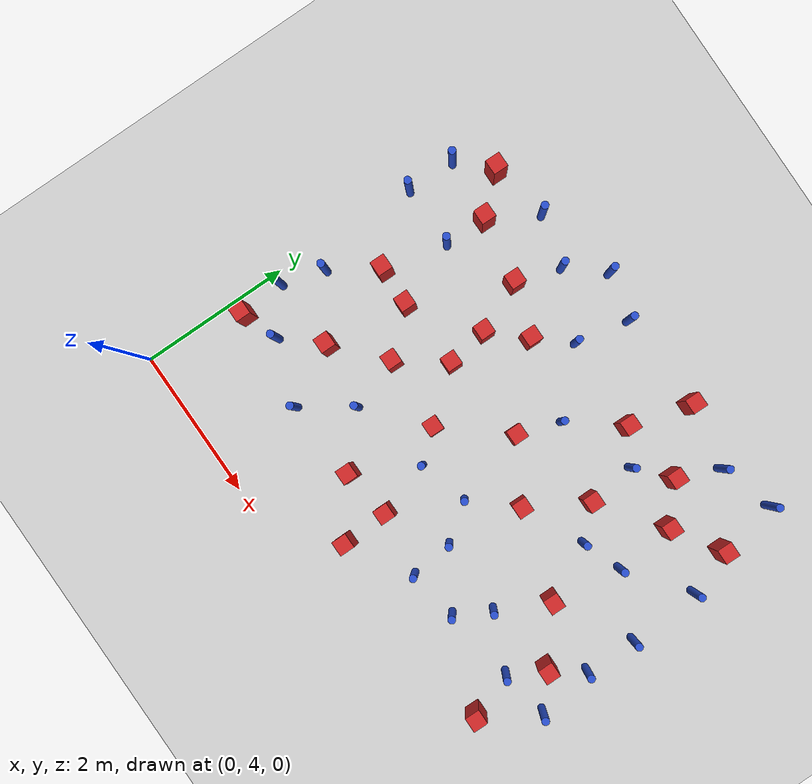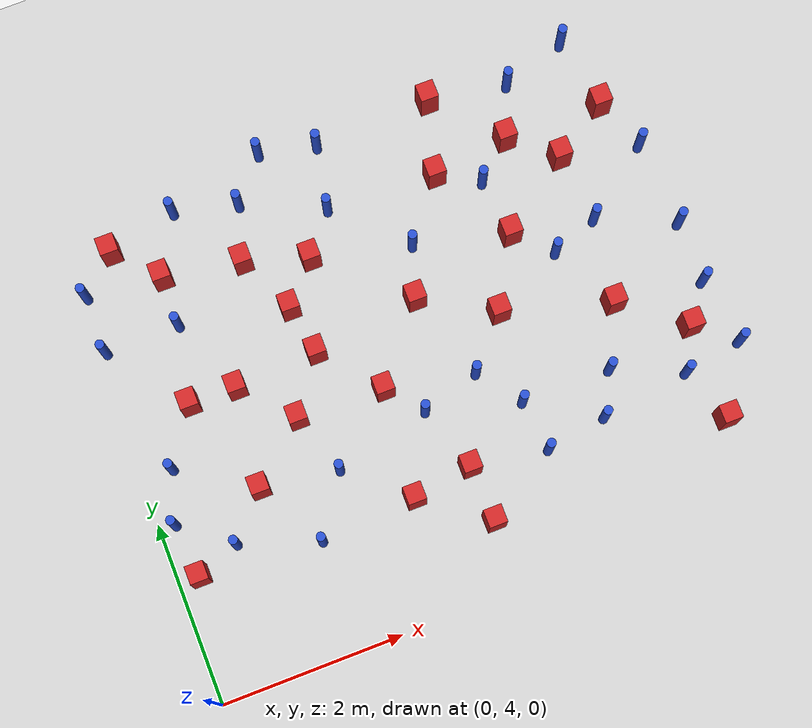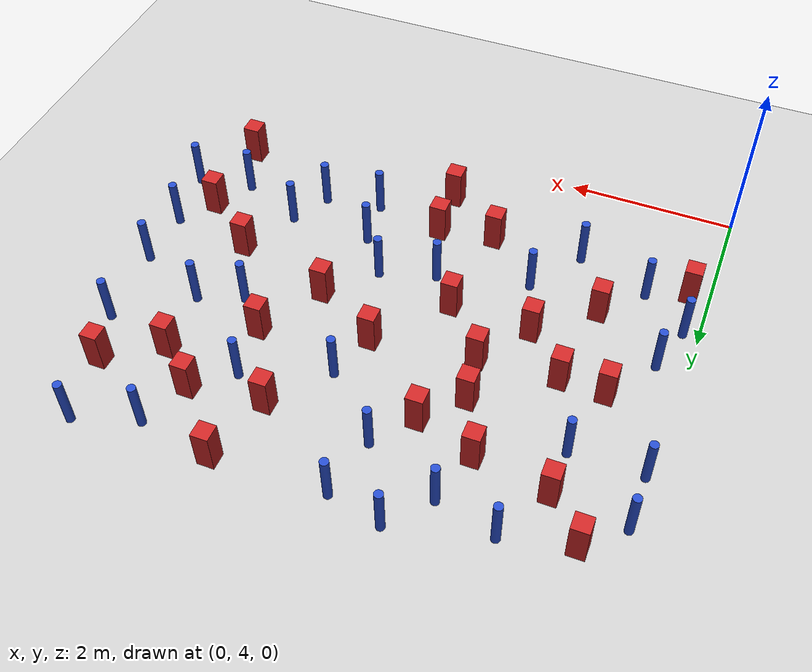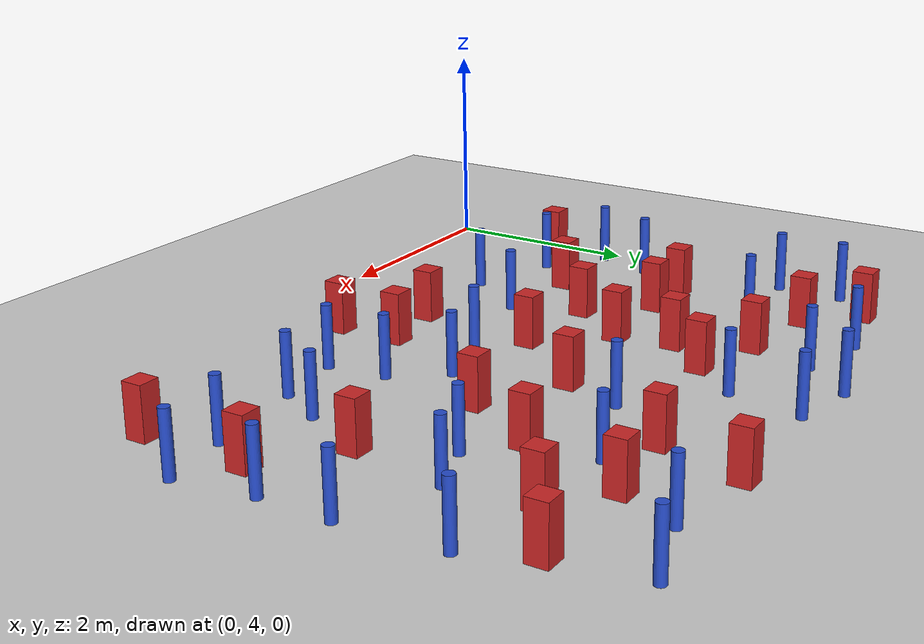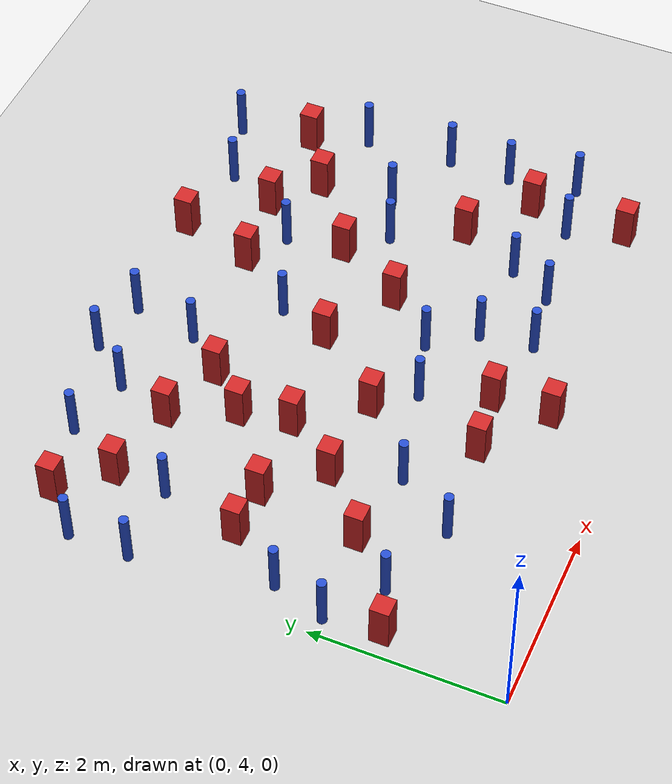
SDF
<sdf version="1.6">
 <world name="default">
  <model name="ground_plane">
   <static>1</static>
   <link name="link">
    <collision name="collision">
     <geometry><plane><normal>0 0 1</normal><size>100 100</size></plane></geometry>
     <surface><friction><ode><mu>100</mu><mu2>50</mu2></ode></friction></surface>
    </collision>
    <visual name="visual">
     <cast_shadows>0</cast_shadows>
     <geometry><plane><normal>0 0 1</normal><size>100 100</size></plane></geometry>
     <material>
      <ambient>1.0 1.0 1.0 1.0</ambient>
      <diffuse>0.8 0.8 0.8 1.0</diffuse>
      <specular>0.01 0.01 0.01 1.000000</specular>
     </material>
    </visual>
   </link>
  </model>
  <model name="square_post_obstacle0">
   <static>true</static>
   <pose>4.18378343752 6.83594678539 1.91545236811e-07 -7.35059704564e-06 1.12565212e-07 2.39332434364e-05</pose>
   <link name="link">
    <pose>0 0 0.25 0 -0 0</pose>
    <inertial>
     <mass>100</mass>
     <inertia>
      <ixx>0.166667</ixx>
      <ixy>0</ixy>
      <ixz>0</ixz>
      <iyy>0.166667</iyy>
      <iyz>0</iyz>
      <izz>0.166667</izz>
     </inertia>
    </inertial>
    <collision name="collision"><geometry><box><size>.2 .2 .5</size></box></geometry></collision>
    <visual name="visual">
     <geometry><box><size>.2 .2 .5</size></box></geometry>
     <material>
      <script><name>Gazebo/Red</name><uri>file://media/materials/scripts/gazebo.material</uri></script>
     </material>
    </visual>
   </link>
  </model>
  <model name="square_post_obstacle2">
   <static>true</static>
   <pose>4.0908791907 8.49679090564 1.91545236811e-07 -7.35059704564e-06 1.12565212e-07 2.39332434364e-05</pose>
   <link name="link">
    <pose>0 0 0.25 0 -0 0</pose>
    <inertial>
     <mass>100</mass>
     <inertia>
      <ixx>0.166667</ixx>
      <ixy>0</ixy>
      <ixz>0</ixz>
      <iyy>0.166667</iyy>
      <iyz>0</iyz>
      <izz>0.166667</izz>
     </inertia>
    </inertial>
    <collision name="collision"><geometry><box><size>.2 .2 .5</size></box></geometry></collision>
    <visual name="visual">
     <geometry><box><size>.2 .2 .5</size></box></geometry>
     <material>
      <script><name>Gazebo/Red</name><uri>file://media/materials/scripts/gazebo.material</uri></script>
     </material>
    </visual>
   </link>
  </model>
  <model name="square_post_obstacle6">
   <static>true</static>
   <pose>2.62487271213 5.29141370215 1.91545236811e-07 -7.35059704564e-06 1.12565212e-07 2.39332434364e-05</pose>
   <link name="link">
    <pose>0 0 0.25 0 -0 0</pose>
    <inertial>
     <mass>100</mass>
     <inertia>
      <ixx>0.166667</ixx>
      <ixy>0</ixy>
      <ixz>0</ixz>
      <iyy>0.166667</iyy>
      <iyz>0</iyz>
      <izz>0.166667</izz>
     </inertia>
    </inertial>
    <collision name="collision"><geometry><box><size>.2 .2 .5</size></box></geometry></collision>
    <visual name="visual">
     <geometry><box><size>.2 .2 .5</size></box></geometry>
     <material>
      <script><name>Gazebo/Red</name><uri>file://media/materials/scripts/gazebo.material</uri></script>
     </material>
    </visual>
   </link>
  </model>
  <model name="square_post_obstacle11">
   <static>true</static>
   <pose>0.240388420057 5.33074319802 1.91545236811e-07 -7.35059704564e-06 1.12565212e-07 2.39332434364e-05</pose>
   <link name="link">
    <pose>0 0 0.25 0 -0 0</pose>
    <inertial>
     <mass>100</mass>
     <inertia>
      <ixx>0.166667</ixx>
      <ixy>0</ixy>
      <ixz>0</ixz>
      <iyy>0.166667</iyy>
      <iyz>0</iyz>
      <izz>0.166667</izz>
     </inertia>
    </inertial>
    <collision name="collision"><geometry><box><size>.2 .2 .5</size></box></geometry></collision>
    <visual name="visual">
     <geometry><box><size>.2 .2 .5</size></box></geometry>
     <material>
      <script><name>Gazebo/Red</name><uri>file://media/materials/scripts/gazebo.material</uri></script>
     </material>
    </visual>
   </link>
  </model>
  <model name="square_post_obstacle25">
   <static>true</static>
   <pose>5.42968724935 8.2010481353 1.91545236811e-07 -7.35059704564e-06 1.12565212e-07 2.39332434364e-05</pose>
   <link name="link">
    <pose>0 0 0.25 0 -0 0</pose>
    <inertial>
     <mass>100</mass>
     <inertia>
      <ixx>0.166667</ixx>
      <ixy>0</ixy>
      <ixz>0</ixz>
      <iyy>0.166667</iyy>
      <iyz>0</iyz>
      <izz>0.166667</izz>
     </inertia>
    </inertial>
    <collision name="collision"><geometry><box><size>.2 .2 .5</size></box></geometry></collision>
    <visual name="visual">
     <geometry><box><size>.2 .2 .5</size></box></geometry>
     <material>
      <script><name>Gazebo/Red</name><uri>file://media/materials/scripts/gazebo.material</uri></script>
     </material>
    </visual>
   </link>
  </model>
  <model name="pole_obstacle18">
   <static>true</static>
   <pose>1.29899573097 9.1177182686 7.38925637345e-09 -8.47170692798e-08 1.24976764881e-08 -1.74513093027e-07</pose>
   <link name="link">
    <pose>0 0 0.3 0 -0 0</pose>
    <inertial>
     <mass>1</mass>
     <inertia><ixx>0.145833</ixx><ixy>0</ixy><ixz>0</ixz><iyy>0.145833</iyy><iyz>0</iyz><izz>0.125</izz></inertia>
    </inertial>
    <collision name="collision">
     <geometry><cylinder><radius>0.05</radius><length>.6</length></cylinder></geometry>
    </collision>
    <visual name="visual">
     <geometry><cylinder><radius>0.05</radius><length>.6</length></cylinder></geometry>
     <material>
      <script><name>Gazebo/Blue</name><uri>file://media/materials/scripts/gazebo.material</uri></script>
     </material>
    </visual>
   </link>
  </model>
  <model name="pole_obstacle23">
   <static>true</static>
   <pose>5.1986495338 9.16878586541 7.38925637345e-09 -8.471706928e-08 1.24976765081e-08 -1.74513093015e-07</pose>
   <link name="link">
    <pose>0 0 0.3 0 -0 0</pose>
    <inertial>
     <mass>1</mass>
     <inertia><ixx>0.145833</ixx><ixy>0</ixy><ixz>0</ixz><iyy>0.145833</iyy><iyz>0</iyz><izz>0.125</izz></inertia>
    </inertial>
    <collision name="collision">
     <geometry><cylinder><radius>0.05</radius><length>.6</length></cylinder></geometry>
    </collision>
    <visual name="visual">
     <geometry><cylinder><radius>0.05</radius><length>.6</length></cylinder></geometry>
     <material>
      <script><name>Gazebo/Blue</name><uri>file://media/materials/scripts/gazebo.material</uri></script>
     </material>
    </visual>
   </link>
  </model>
  <model name="pole_obstacle25">
   <static>true</static>
   <pose>6.45804341176 5.60967143992 7.38925637345e-09 -8.47170692796e-08 1.24976764786e-08 -1.74513093032e-07</pose>
   <link name="link">
    <pose>0 0 0.3 0 -0 0</pose>
    <inertial>
     <mass>1</mass>
     <inertia><ixx>0.145833</ixx><ixy>0</ixy><ixz>0</ixz><iyy>0.145833</iyy><iyz>0</iyz><izz>0.125</izz></inertia>
    </inertial>
    <collision name="collision">
     <geometry><cylinder><radius>0.05</radius><length>.6</length></cylinder></geometry>
    </collision>
    <visual name="visual">
     <geometry><cylinder><radius>0.05</radius><length>.6</length></cylinder></geometry>
     <material>
      <script><name>Gazebo/Blue</name><uri>file://media/materials/scripts/gazebo.material</uri></script>
     </material>
    </visual>
   </link>
  </model>
  <model name="pole_obstacle29">
   <static>true</static>
   <pose>4.80524898663 5.36287392133 7.38925637345e-09 -8.47170692796e-08 1.24976764786e-08 -1.74513093032e-07</pose>
   <link name="link">
    <pose>0 0 0.3 0 -0 0</pose>
    <inertial>
     <mass>1</mass>
     <inertia><ixx>0.145833</ixx><ixy>0</ixy><ixz>0</ixz><iyy>0.145833</iyy><iyz>0</iyz><izz>0.125</izz></inertia>
    </inertial>
    <collision name="collision">
     <geometry><cylinder><radius>0.05</radius><length>.6</length></cylinder></geometry>
    </collision>
    <visual name="visual">
     <geometry><cylinder><radius>0.05</radius><length>.6</length></cylinder></geometry>
     <material>
      <script><name>Gazebo/Blue</name><uri>file://media/materials/scripts/gazebo.material</uri></script>
     </material>
    </visual>
   </link>
  </model>
  <model name="square_post_obstacle36">
   <static>true</static>
   <pose>0.52901296626 8.94016933728 1.91545236811e-07 -7.35059704564e-06 1.12565212e-07 2.39332434364e-05</pose>
   <link name="link">
    <pose>0 0 0.25 0 -0 0</pose>
    <inertial>
     <mass>100</mass>
     <inertia>
      <ixx>0.166667</ixx>
      <ixy>0</ixy>
      <ixz>0</ixz>
      <iyy>0.166667</iyy>
      <iyz>0</iyz>
      <izz>0.166667</izz>
     </inertia>
    </inertial>
    <collision name="collision"><geometry><box><size>.2 .2 .5</size></box></geometry></collision>
    <visual name="visual">
     <geometry><box><size>.2 .2 .5</size></box></geometry>
     <material>
      <script><name>Gazebo/Red</name><uri>file://media/materials/scripts/gazebo.material</uri></script>
     </material>
    </visual>
   </link>
  </model>
  <model name="pole_obstacle42">
   <static>true</static>
   <pose>4.5482257613 8.2385773259 7.38925637345e-09 -8.471706928e-08 1.24976765081e-08 -1.74513093015e-07</pose>
   <link name="link">
    <pose>0 0 0.3 0 -0 0</pose>
    <inertial>
     <mass>1</mass>
     <inertia><ixx>0.145833</ixx><ixy>0</ixy><ixz>0</ixz><iyy>0.145833</iyy><iyz>0</iyz><izz>0.125</izz></inertia>
    </inertial>
    <collision name="collision">
     <geometry><cylinder><radius>0.05</radius><length>.6</length></cylinder></geometry>
    </collision>
    <visual name="visual">
     <geometry><cylinder><radius>0.05</radius><length>.6</length></cylinder></geometry>
     <material>
      <script><name>Gazebo/Blue</name><uri>file://media/materials/scripts/gazebo.material</uri></script>
     </material>
    </visual>
   </link>
  </model>
  <model name="square_post_obstacle42">
   <static>true</static>
   <pose>2.73456326847 6.49234185607 1.91545236811e-07 -7.35059704564e-06 1.12565212e-07 2.39332434364e-05</pose>
   <link name="link">
    <pose>0 0 0.25 0 -0 0</pose>
    <inertial>
     <mass>100</mass>
     <inertia>
      <ixx>0.166667</ixx>
      <ixy>0</ixy>
      <ixz>0</ixz>
      <iyy>0.166667</iyy>
      <iyz>0</iyz>
      <izz>0.166667</izz>
     </inertia>
    </inertial>
    <collision name="collision"><geometry><box><size>.2 .2 .5</size></box></geometry></collision>
    <visual name="visual">
     <geometry><box><size>.2 .2 .5</size></box></geometry>
     <material>
      <script><name>Gazebo/Red</name><uri>file://media/materials/scripts/gazebo.material</uri></script>
     </material>
    </visual>
   </link>
  </model>
  <model name="square_post_obstacle47">
   <static>true</static>
   <pose>6.05176542562 8.60042291534 1.91545236811e-07 -7.35059704564e-06 1.12565212e-07 2.39332434364e-05</pose>
   <link name="link">
    <pose>0 0 0.25 0 -0 0</pose>
    <inertial>
     <mass>100</mass>
     <inertia>
      <ixx>0.166667</ixx>
      <ixy>0</ixy>
      <ixz>0</ixz>
      <iyy>0.166667</iyy>
      <iyz>0</iyz>
      <izz>0.166667</izz>
     </inertia>
    </inertial>
    <collision name="collision"><geometry><box><size>.2 .2 .5</size></box></geometry></collision>
    <visual name="visual">
     <geometry><box><size>.2 .2 .5</size></box></geometry>
     <material>
      <script><name>Gazebo/Red</name><uri>file://media/materials/scripts/gazebo.material</uri></script>
     </material>
    </visual>
   </link>
  </model>
  <model name="square_post_obstacle49">
   <static>true</static>
   <pose>2.50940016976 8.11247774517 1.91545236811e-07 -7.35059704564e-06 1.12565212e-07 2.39332434364e-05</pose>
   <link name="link">
    <pose>0 0 0.25 0 -0 0</pose>
    <inertial>
     <mass>100</mass>
     <inertia>
      <ixx>0.166667</ixx>
      <ixy>0</ixy>
      <ixz>0</ixz>
      <iyy>0.166667</iyy>
      <iyz>0</iyz>
      <izz>0.166667</izz>
     </inertia>
    </inertial>
    <collision name="collision"><geometry><box><size>.2 .2 .5</size></box></geometry></collision>
    <visual name="visual">
     <geometry><box><size>.2 .2 .5</size></box></geometry>
     <material>
      <script><name>Gazebo/Red</name><uri>file://media/materials/scripts/gazebo.material</uri></script>
     </material>
    </visual>
   </link>
  </model>
  <model name="pole_obstacle51">
   <static>true</static>
   <pose>2.87249758234 8.55119787707 7.38925637345e-09 -8.47170692793e-08 1.24976764408e-08 -1.74513093041e-07</pose>
   <link name="link">
    <pose>0 0 0.3 0 -0 0</pose>
    <inertial>
     <mass>1</mass>
     <inertia><ixx>0.145833</ixx><ixy>0</ixy><ixz>0</ixz><iyy>0.145833</iyy><iyz>0</iyz><izz>0.125</izz></inertia>
    </inertial>
    <collision name="collision">
     <geometry><cylinder><radius>0.05</radius><length>.6</length></cylinder></geometry>
    </collision>
    <visual name="visual">
     <geometry><cylinder><radius>0.05</radius><length>.6</length></cylinder></geometry>
     <material>
      <script><name>Gazebo/Blue</name><uri>file://media/materials/scripts/gazebo.material</uri></script>
     </material>
    </visual>
   </link>
  </model>
  <model name="pole_obstacle59">
   <static>true</static>
   <pose>0.119368514696 8.56216885918 7.38925637345e-09 -8.47170692796e-08 1.24976764716e-08 -1.74513093036e-07</pose>
   <link name="link">
    <pose>0 0 0.3 0 -0 0</pose>
    <inertial>
     <mass>1</mass>
     <inertia><ixx>0.145833</ixx><ixy>0</ixy><ixz>0</ixz><iyy>0.145833</iyy><iyz>0</iyz><izz>0.125</izz></inertia>
    </inertial>
    <collision name="collision">
     <geometry><cylinder><radius>0.05</radius><length>.6</length></cylinder></geometry>
    </collision>
    <visual name="visual">
     <geometry><cylinder><radius>0.05</radius><length>.6</length></cylinder></geometry>
     <material>
      <script><name>Gazebo/Blue</name><uri>file://media/materials/scripts/gazebo.material</uri></script>
     </material>
    </visual>
   </link>
  </model>
  <model name="pole_obstacle60">
   <static>true</static>
   <pose>0.936696141784 7.92211647578 7.38925637345e-09 -8.471706928e-08 1.24976765086e-08 -1.74513093015e-07</pose>
   <link name="link">
    <pose>0 0 0.3 0 -0 0</pose>
    <inertial>
     <mass>1</mass>
     <inertia><ixx>0.145833</ixx><ixy>0</ixy><ixz>0</ixz><iyy>0.145833</iyy><iyz>0</iyz><izz>0.125</izz></inertia>
    </inertial>
    <collision name="collision">
     <geometry><cylinder><radius>0.05</radius><length>.6</length></cylinder></geometry>
    </collision>
    <visual name="visual">
     <geometry><cylinder><radius>0.05</radius><length>.6</length></cylinder></geometry>
     <material>
      <script><name>Gazebo/Blue</name><uri>file://media/materials/scripts/gazebo.material</uri></script>
     </material>
    </visual>
   </link>
  </model>
  <model name="square_post_obstacle73">
   <static>true</static>
   <pose>5.366720731 6.49364630275 1.91545236811e-07 -7.35059704564e-06 1.12565212e-07 2.39332434364e-05</pose>
   <link name="link">
    <pose>0 0 0.25 0 -0 0</pose>
    <inertial>
     <mass>100</mass>
     <inertia>
      <ixx>0.166667</ixx>
      <ixy>0</ixy>
      <ixz>0</ixz>
      <iyy>0.166667</iyy>
      <iyz>0</iyz>
      <izz>0.166667</izz>
     </inertia>
    </inertial>
    <collision name="collision"><geometry><box><size>.2 .2 .5</size></box></geometry></collision>
    <visual name="visual">
     <geometry><box><size>.2 .2 .5</size></box></geometry>
     <material>
      <script><name>Gazebo/Red</name><uri>file://media/materials/scripts/gazebo.material</uri></script>
     </material>
    </visual>
   </link>
  </model>
  <model name="square_post_obstacle75">
   <static>true</static>
   <pose>6.00996134092 4.90421842747 1.91545236811e-07 -7.35059704564e-06 1.12565212e-07 2.39332434364e-05</pose>
   <link name="link">
    <pose>0 0 0.25 0 -0 0</pose>
    <inertial>
     <mass>100</mass>
     <inertia>
      <ixx>0.166667</ixx>
      <ixy>0</ixy>
      <ixz>0</ixz>
      <iyy>0.166667</iyy>
      <iyz>0</iyz>
      <izz>0.166667</izz>
     </inertia>
    </inertial>
    <collision name="collision"><geometry><box><size>.2 .2 .5</size></box></geometry></collision>
    <visual name="visual">
     <geometry><box><size>.2 .2 .5</size></box></geometry>
     <material>
      <script><name>Gazebo/Red</name><uri>file://media/materials/scripts/gazebo.material</uri></script>
     </material>
    </visual>
   </link>
  </model>
  <model name="pole_obstacle72">
   <static>true</static>
   <pose>4.99425950152 7.22126016001 7.38925637345e-09 -8.47170692796e-08 1.24976764786e-08 -1.74513093032e-07</pose>
   <link name="link">
    <pose>0 0 0.3 0 -0 0</pose>
    <inertial>
     <mass>1</mass>
     <inertia><ixx>0.145833</ixx><ixy>0</ixy><ixz>0</ixz><iyy>0.145833</iyy><iyz>0</iyz><izz>0.125</izz></inertia>
    </inertial>
    <collision name="collision">
     <geometry><cylinder><radius>0.05</radius><length>.6</length></cylinder></geometry>
    </collision>
    <visual name="visual">
     <geometry><cylinder><radius>0.05</radius><length>.6</length></cylinder></geometry>
     <material>
      <script><name>Gazebo/Blue</name><uri>file://media/materials/scripts/gazebo.material</uri></script>
     </material>
    </visual>
   </link>
  </model>
  <model name="pole_obstacle73">
   <static>true</static>
   <pose>0.113746472409 7.9169192514 7.38925637345e-09 -8.47170692799e-08 1.2497676504e-08 -1.74513093019e-07</pose>
   <link name="link">
    <pose>0 0 0.3 0 -0 0</pose>
    <inertial>
     <mass>1</mass>
     <inertia><ixx>0.145833</ixx><ixy>0</ixy><ixz>0</ixz><iyy>0.145833</iyy><iyz>0</iyz><izz>0.125</izz></inertia>
    </inertial>
    <collision name="collision">
     <geometry><cylinder><radius>0.05</radius><length>.6</length></cylinder></geometry>
    </collision>
    <visual name="visual">
     <geometry><cylinder><radius>0.05</radius><length>.6</length></cylinder></geometry>
     <material>
      <script><name>Gazebo/Blue</name><uri>file://media/materials/scripts/gazebo.material</uri></script>
     </material>
    </visual>
   </link>
  </model>
  <model name="square_post_obstacle78">
   <static>true</static>
   <pose>4.95322775278 8.60680528537 1.91545236811e-07 -7.35059704564e-06 1.12565212e-07 2.39332434364e-05</pose>
   <link name="link">
    <pose>0 0 0.25 0 -0 0</pose>
    <inertial>
     <mass>100</mass>
     <inertia>
      <ixx>0.166667</ixx>
      <ixy>0</ixy>
      <ixz>0</ixz>
      <iyy>0.166667</iyy>
      <iyz>0</iyz>
      <izz>0.166667</izz>
     </inertia>
    </inertial>
    <collision name="collision"><geometry><box><size>.2 .2 .5</size></box></geometry></collision>
    <visual name="visual">
     <geometry><box><size>.2 .2 .5</size></box></geometry>
     <material>
      <script><name>Gazebo/Red</name><uri>file://media/materials/scripts/gazebo.material</uri></script>
     </material>
    </visual>
   </link>
  </model>
  <model name="pole_obstacle92">
   <static>true</static>
   <pose>3.58703946892 7.84863488111 7.38925637345e-09 -8.47170692798e-08 1.24976765033e-08 -1.74513093019e-07</pose>
   <link name="link">
    <pose>0 0 0.3 0 -0 0</pose>
    <inertial>
     <mass>1</mass>
     <inertia><ixx>0.145833</ixx><ixy>0</ixy><ixz>0</ixz><iyy>0.145833</iyy><iyz>0</iyz><izz>0.125</izz></inertia>
    </inertial>
    <collision name="collision">
     <geometry><cylinder><radius>0.05</radius><length>.6</length></cylinder></geometry>
    </collision>
    <visual name="visual">
     <geometry><cylinder><radius>0.05</radius><length>.6</length></cylinder></geometry>
     <material>
      <script><name>Gazebo/Blue</name><uri>file://media/materials/scripts/gazebo.material</uri></script>
     </material>
    </visual>
   </link>
  </model>
  <model name="pole_obstacle104">
   <static>true</static>
   <pose>0.180297331004 5.91834383347 7.38925637345e-09 -8.47170692799e-08 1.24976765068e-08 -1.74513093018e-07</pose>
   <link name="link">
    <pose>0 0 0.3 0 -0 0</pose>
    <inertial>
     <mass>1</mass>
     <inertia><ixx>0.145833</ixx><ixy>0</ixy><ixz>0</ixz><iyy>0.145833</iyy><iyz>0</iyz><izz>0.125</izz></inertia>
    </inertial>
    <collision name="collision">
     <geometry><cylinder><radius>0.05</radius><length>.6</length></cylinder></geometry>
    </collision>
    <visual name="visual">
     <geometry><cylinder><radius>0.05</radius><length>.6</length></cylinder></geometry>
     <material>
      <script><name>Gazebo/Blue</name><uri>file://media/materials/scripts/gazebo.material</uri></script>
     </material>
    </visual>
   </link>
  </model>
  <model name="pole_obstacle105">
   <static>true</static>
   <pose>5.79898058889 5.4977747993 7.38925637345e-09 -8.47170692796e-08 1.24976764786e-08 -1.74513093032e-07</pose>
   <link name="link">
    <pose>0 0 0.3 0 -0 0</pose>
    <inertial>
     <mass>1</mass>
     <inertia><ixx>0.145833</ixx><ixy>0</ixy><ixz>0</ixz><iyy>0.145833</iyy><iyz>0</iyz><izz>0.125</izz></inertia>
    </inertial>
    <collision name="collision">
     <geometry><cylinder><radius>0.05</radius><length>.6</length></cylinder></geometry>
    </collision>
    <visual name="visual">
     <geometry><cylinder><radius>0.05</radius><length>.6</length></cylinder></geometry>
     <material>
      <script><name>Gazebo/Blue</name><uri>file://media/materials/scripts/gazebo.material</uri></script>
     </material>
    </visual>
   </link>
  </model>
  <model name="square_post_obstacle109">
   <static>true</static>
   <pose>3.28849453001 5.39214830813 1.91545236811e-07 -7.35059704564e-06 1.12565212e-07 2.39332434364e-05</pose>
   <link name="link">
    <pose>0 0 0.25 0 -0 0</pose>
    <inertial>
     <mass>100</mass>
     <inertia>
      <ixx>0.166667</ixx>
      <ixy>0</ixy>
      <ixz>0</ixz>
      <iyy>0.166667</iyy>
      <iyz>0</iyz>
      <izz>0.166667</izz>
     </inertia>
    </inertial>
    <collision name="collision"><geometry><box><size>.2 .2 .5</size></box></geometry></collision>
    <visual name="visual">
     <geometry><box><size>.2 .2 .5</size></box></geometry>
     <material>
      <script><name>Gazebo/Red</name><uri>file://media/materials/scripts/gazebo.material</uri></script>
     </material>
    </visual>
   </link>
  </model>
  <model name="pole_obstacle122">
   <static>true</static>
   <pose>5.5156611682 7.41459402687 7.38925637345e-09 -8.47170692796e-08 1.24976764786e-08 -1.74513093032e-07</pose>
   <link name="link">
    <pose>0 0 0.3 0 -0 0</pose>
    <inertial>
     <mass>1</mass>
     <inertia><ixx>0.145833</ixx><ixy>0</ixy><ixz>0</ixz><iyy>0.145833</iyy><iyz>0</iyz><izz>0.125</izz></inertia>
    </inertial>
    <collision name="collision">
     <geometry><cylinder><radius>0.05</radius><length>.6</length></cylinder></geometry>
    </collision>
    <visual name="visual">
     <geometry><cylinder><radius>0.05</radius><length>.6</length></cylinder></geometry>
     <material>
      <script><name>Gazebo/Blue</name><uri>file://media/materials/scripts/gazebo.material</uri></script>
     </material>
    </visual>
   </link>
  </model>
  <model name="pole_obstacle125">
   <static>true</static>
   <pose>1.99710747169 5.84379204718 7.38925637345e-09 -8.471706928e-08 1.24976765202e-08 -1.7451309301e-07</pose>
   <link name="link">
    <pose>0 0 0.3 0 -0 0</pose>
    <inertial>
     <mass>1</mass>
     <inertia><ixx>0.145833</ixx><ixy>0</ixy><ixz>0</ixz><iyy>0.145833</iyy><iyz>0</iyz><izz>0.125</izz></inertia>
    </inertial>
    <collision name="collision">
     <geometry><cylinder><radius>0.05</radius><length>.6</length></cylinder></geometry>
    </collision>
    <visual name="visual">
     <geometry><cylinder><radius>0.05</radius><length>.6</length></cylinder></geometry>
     <material>
      <script><name>Gazebo/Blue</name><uri>file://media/materials/scripts/gazebo.material</uri></script>
     </material>
    </visual>
   </link>
  </model>
  <model name="pole_obstacle129">
   <static>true</static>
   <pose>5.92183715578 9.40250919232 7.38925637345e-09 -8.471706928e-08 1.24976765081e-08 -1.74513093015e-07</pose>
   <link name="link">
    <pose>0 0 0.3 0 -0 0</pose>
    <inertial>
     <mass>1</mass>
     <inertia><ixx>0.145833</ixx><ixy>0</ixy><ixz>0</ixz><iyy>0.145833</iyy><iyz>0</iyz><izz>0.125</izz></inertia>
    </inertial>
    <collision name="collision">
     <geometry><cylinder><radius>0.05</radius><length>.6</length></cylinder></geometry>
    </collision>
    <visual name="visual">
     <geometry><cylinder><radius>0.05</radius><length>.6</length></cylinder></geometry>
     <material>
      <script><name>Gazebo/Blue</name><uri>file://media/materials/scripts/gazebo.material</uri></script>
     </material>
    </visual>
   </link>
  </model>
  <model name="pole_obstacle135">
   <static>true</static>
   <pose>1.99336710361 8.94036292646 7.38925637345e-09 -8.47170692798e-08 1.24976764928e-08 -1.74513093023e-07</pose>
   <link name="link">
    <pose>0 0 0.3 0 -0 0</pose>
    <inertial>
     <mass>1</mass>
     <inertia><ixx>0.145833</ixx><ixy>0</ixy><ixz>0</ixz><iyy>0.145833</iyy><iyz>0</iyz><izz>0.125</izz></inertia>
    </inertial>
    <collision name="collision">
     <geometry><cylinder><radius>0.05</radius><length>.6</length></cylinder></geometry>
    </collision>
    <visual name="visual">
     <geometry><cylinder><radius>0.05</radius><length>.6</length></cylinder></geometry>
     <material>
      <script><name>Gazebo/Blue</name><uri>file://media/materials/scripts/gazebo.material</uri></script>
     </material>
    </visual>
   </link>
  </model>
  <model name="pole_obstacle137">
   <static>true</static>
   <pose>3.01348648427 9.26041997721 7.38925637345e-09 -8.47170692793e-08 1.24976764408e-08 -1.74513093041e-07</pose>
   <link name="link">
    <pose>0 0 0.3 0 -0 0</pose>
    <inertial>
     <mass>1</mass>
     <inertia><ixx>0.145833</ixx><ixy>0</ixy><ixz>0</ixz><iyy>0.145833</iyy><iyz>0</iyz><izz>0.125</izz></inertia>
    </inertial>
    <collision name="collision">
     <geometry><cylinder><radius>0.05</radius><length>.6</length></cylinder></geometry>
    </collision>
    <visual name="visual">
     <geometry><cylinder><radius>0.05</radius><length>.6</length></cylinder></geometry>
     <material>
      <script><name>Gazebo/Blue</name><uri>file://media/materials/scripts/gazebo.material</uri></script>
     </material>
    </visual>
   </link>
  </model>
  <model name="square_post_obstacle120">
   <static>true</static>
   <pose>2.20485554193 7.12492410169 1.91545236811e-07 -7.35059704564e-06 1.12565212e-07 2.39332434364e-05</pose>
   <link name="link">
    <pose>0 0 0.25 0 -0 0</pose>
    <inertial>
     <mass>100</mass>
     <inertia>
      <ixx>0.166667</ixx>
      <ixy>0</ixy>
      <ixz>0</ixz>
      <iyy>0.166667</iyy>
      <iyz>0</iyz>
      <izz>0.166667</izz>
     </inertia>
    </inertial>
    <collision name="collision"><geometry><box><size>.2 .2 .5</size></box></geometry></collision>
    <visual name="visual">
     <geometry><box><size>.2 .2 .5</size></box></geometry>
     <material>
      <script><name>Gazebo/Red</name><uri>file://media/materials/scripts/gazebo.material</uri></script>
     </material>
    </visual>
   </link>
  </model>
  <model name="square_post_obstacle130">
   <static>true</static>
   <pose>0.951556130268 8.47724242005 1.91545236811e-07 -7.35059704564e-06 1.12565212e-07 2.39332434364e-05</pose>
   <link name="link">
    <pose>0 0 0.25 0 -0 0</pose>
    <inertial>
     <mass>100</mass>
     <inertia>
      <ixx>0.166667</ixx>
      <ixy>0</ixy>
      <ixz>0</ixz>
      <iyy>0.166667</iyy>
      <iyz>0</iyz>
      <izz>0.166667</izz>
     </inertia>
    </inertial>
    <collision name="collision"><geometry><box><size>.2 .2 .5</size></box></geometry></collision>
    <visual name="visual">
     <geometry><box><size>.2 .2 .5</size></box></geometry>
     <material>
      <script><name>Gazebo/Red</name><uri>file://media/materials/scripts/gazebo.material</uri></script>
     </material>
    </visual>
   </link>
  </model>
  <model name="square_post_obstacle132">
   <static>true</static>
   <pose>1.8148279805 8.33771621422 1.91545236811e-07 -7.35059704564e-06 1.12565212e-07 2.39332434364e-05</pose>
   <link name="link">
    <pose>0 0 0.25 0 -0 0</pose>
    <inertial>
     <mass>100</mass>
     <inertia>
      <ixx>0.166667</ixx>
      <ixy>0</ixy>
      <ixz>0</ixz>
      <iyy>0.166667</iyy>
      <iyz>0</iyz>
      <izz>0.166667</izz>
     </inertia>
    </inertial>
    <collision name="collision"><geometry><box><size>.2 .2 .5</size></box></geometry></collision>
    <visual name="visual">
     <geometry><box><size>.2 .2 .5</size></box></geometry>
     <material>
      <script><name>Gazebo/Red</name><uri>file://media/materials/scripts/gazebo.material</uri></script>
     </material>
    </visual>
   </link>
  </model>
  <model name="pole_obstacle148">
   <static>true</static>
   <pose>0.711980550941 5.4982812138 7.38925637345e-09 -8.471706928e-08 1.24976765086e-08 -1.74513093015e-07</pose>
   <link name="link">
    <pose>0 0 0.3 0 -0 0</pose>
    <inertial>
     <mass>1</mass>
     <inertia><ixx>0.145833</ixx><ixy>0</ixy><ixz>0</ixz><iyy>0.145833</iyy><iyz>0</iyz><izz>0.125</izz></inertia>
    </inertial>
    <collision name="collision">
     <geometry><cylinder><radius>0.05</radius><length>.6</length></cylinder></geometry>
    </collision>
    <visual name="visual">
     <geometry><cylinder><radius>0.05</radius><length>.6</length></cylinder></geometry>
     <material>
      <script><name>Gazebo/Blue</name><uri>file://media/materials/scripts/gazebo.material</uri></script>
     </material>
    </visual>
   </link>
  </model>
  <model name="square_post_obstacle139">
   <static>true</static>
   <pose>4.61513703773 7.59475006377 1.91545236811e-07 -7.35059704564e-06 1.12565212e-07 2.39332434364e-05</pose>
   <link name="link">
    <pose>0 0 0.25 0 -0 0</pose>
    <inertial>
     <mass>100</mass>
     <inertia>
      <ixx>0.166667</ixx>
      <ixy>0</ixy>
      <ixz>0</ixz>
      <iyy>0.166667</iyy>
      <iyz>0</iyz>
      <izz>0.166667</izz>
     </inertia>
    </inertial>
    <collision name="collision"><geometry><box><size>.2 .2 .5</size></box></geometry></collision>
    <visual name="visual">
     <geometry><box><size>.2 .2 .5</size></box></geometry>
     <material>
      <script><name>Gazebo/Red</name><uri>file://media/materials/scripts/gazebo.material</uri></script>
     </material>
    </visual>
   </link>
  </model>
  <model name="square_post_obstacle141">
   <static>true</static>
   <pose>6.03365550491 5.96450940483 1.91545236811e-07 -7.35059704564e-06 1.12565212e-07 2.39332434364e-05</pose>
   <link name="link">
    <pose>0 0 0.25 0 -0 0</pose>
    <inertial>
     <mass>100</mass>
     <inertia>
      <ixx>0.166667</ixx>
      <ixy>0</ixy>
      <ixz>0</ixz>
      <iyy>0.166667</iyy>
      <iyz>0</iyz>
      <izz>0.166667</izz>
     </inertia>
    </inertial>
    <collision name="collision"><geometry><box><size>.2 .2 .5</size></box></geometry></collision>
    <visual name="visual">
     <geometry><box><size>.2 .2 .5</size></box></geometry>
     <material>
      <script><name>Gazebo/Red</name><uri>file://media/materials/scripts/gazebo.material</uri></script>
     </material>
    </visual>
   </link>
  </model>
  <model name="square_post_obstacle144">
   <static>true</static>
   <pose>1.14372856664 5.9729911244 1.91545236811e-07 -7.35059704564e-06 1.12565212e-07 2.39332434364e-05</pose>
   <link name="link">
    <pose>0 0 0.25 0 -0 0</pose>
    <inertial>
     <mass>100</mass>
     <inertia>
      <ixx>0.166667</ixx>
      <ixy>0</ixy>
      <ixz>0</ixz>
      <iyy>0.166667</iyy>
      <iyz>0</iyz>
      <izz>0.166667</izz>
     </inertia>
    </inertial>
    <collision name="collision"><geometry><box><size>.2 .2 .5</size></box></geometry></collision>
    <visual name="visual">
     <geometry><box><size>.2 .2 .5</size></box></geometry>
     <material>
      <script><name>Gazebo/Red</name><uri>file://media/materials/scripts/gazebo.material</uri></script>
     </material>
    </visual>
   </link>
  </model>
  <model name="square_post_obstacle153">
   <static>true</static>
   <pose>0.759456646098 7.07813870334 1.91545236811e-07 -7.35059704564e-06 1.12565212e-07 2.39332434364e-05</pose>
   <link name="link">
    <pose>0 0 0.25 0 -0 0</pose>
    <inertial>
     <mass>100</mass>
     <inertia>
      <ixx>0.166667</ixx>
      <ixy>0</ixy>
      <ixz>0</ixz>
      <iyy>0.166667</iyy>
      <iyz>0</iyz>
      <izz>0.166667</izz>
     </inertia>
    </inertial>
    <collision name="collision"><geometry><box><size>.2 .2 .5</size></box></geometry></collision>
    <visual name="visual">
     <geometry><box><size>.2 .2 .5</size></box></geometry>
     <material>
      <script><name>Gazebo/Red</name><uri>file://media/materials/scripts/gazebo.material</uri></script>
     </material>
    </visual>
   </link>
  </model>
  <model name="pole_obstacle164">
   <static>true</static>
   <pose>1.56205463244 5.20486676984 7.38925637345e-09 -8.47170692799e-08 1.24976765033e-08 -1.74513093018e-07</pose>
   <link name="link">
    <pose>0 0 0.3 0 -0 0</pose>
    <inertial>
     <mass>1</mass>
     <inertia><ixx>0.145833</ixx><ixy>0</ixy><ixz>0</ixz><iyy>0.145833</iyy><iyz>0</iyz><izz>0.125</izz></inertia>
    </inertial>
    <collision name="collision">
     <geometry><cylinder><radius>0.05</radius><length>.6</length></cylinder></geometry>
    </collision>
    <visual name="visual">
     <geometry><cylinder><radius>0.05</radius><length>.6</length></cylinder></geometry>
     <material>
      <script><name>Gazebo/Blue</name><uri>file://media/materials/scripts/gazebo.material</uri></script>
     </material>
    </visual>
   </link>
  </model>
  <model name="pole_obstacle167">
   <static>true</static>
   <pose>6.28879740116 8.0130011056 7.38925637345e-09 -8.47170692797e-08 1.24976764908e-08 -1.74513093024e-07</pose>
   <link name="link">
    <pose>0 0 0.3 0 -0 0</pose>
    <inertial>
     <mass>1</mass>
     <inertia><ixx>0.145833</ixx><ixy>0</ixy><ixz>0</ixz><iyy>0.145833</iyy><iyz>0</iyz><izz>0.125</izz></inertia>
    </inertial>
    <collision name="collision">
     <geometry><cylinder><radius>0.05</radius><length>.6</length></cylinder></geometry>
    </collision>
    <visual name="visual">
     <geometry><cylinder><radius>0.05</radius><length>.6</length></cylinder></geometry>
     <material>
      <script><name>Gazebo/Blue</name><uri>file://media/materials/scripts/gazebo.material</uri></script>
     </material>
    </visual>
   </link>
  </model>
  <model name="pole_obstacle177">
   <static>true</static>
   <pose>0.351791186749 6.48259333154 7.38925637345e-09 -8.471706928e-08 1.24976765079e-08 -1.74513093015e-07</pose>
   <link name="link">
    <pose>0 0 0.3 0 -0 0</pose>
    <inertial>
     <mass>1</mass>
     <inertia><ixx>0.145833</ixx><ixy>0</ixy><ixz>0</ixz><iyy>0.145833</iyy><iyz>0</iyz><izz>0.125</izz></inertia>
    </inertial>
    <collision name="collision">
     <geometry><cylinder><radius>0.05</radius><length>.6</length></cylinder></geometry>
    </collision>
    <visual name="visual">
     <geometry><cylinder><radius>0.05</radius><length>.6</length></cylinder></geometry>
     <material>
      <script><name>Gazebo/Blue</name><uri>file://media/materials/scripts/gazebo.material</uri></script>
     </material>
    </visual>
   </link>
  </model>
  <model name="pole_obstacle183">
   <static>true</static>
   <pose>3.70983900159 6.29671727115 7.38925637345e-09 -8.47170692798e-08 1.24976765033e-08 -1.74513093019e-07</pose>
   <link name="link">
    <pose>0 0 0.3 0 -0 0</pose>
    <inertial>
     <mass>1</mass>
     <inertia><ixx>0.145833</ixx><ixy>0</ixy><ixz>0</ixz><iyy>0.145833</iyy><iyz>0</iyz><izz>0.125</izz></inertia>
    </inertial>
    <collision name="collision">
     <geometry><cylinder><radius>0.05</radius><length>.6</length></cylinder></geometry>
    </collision>
    <visual name="visual">
     <geometry><cylinder><radius>0.05</radius><length>.6</length></cylinder></geometry>
     <material>
      <script><name>Gazebo/Blue</name><uri>file://media/materials/scripts/gazebo.material</uri></script>
     </material>
    </visual>
   </link>
  </model>
  <model name="pole_obstacle186">
   <static>true</static>
   <pose>4.05810240008 5.82858656964 7.38925637345e-09 -8.47170692796e-08 1.24976764786e-08 -1.74513093032e-07</pose>
   <link name="link">
    <pose>0 0 0.3 0 -0 0</pose>
    <inertial>
     <mass>1</mass>
     <inertia><ixx>0.145833</ixx><ixy>0</ixy><ixz>0</ixz><iyy>0.145833</iyy><iyz>0</iyz><izz>0.125</izz></inertia>
    </inertial>
    <collision name="collision">
     <geometry><cylinder><radius>0.05</radius><length>.6</length></cylinder></geometry>
    </collision>
    <visual name="visual">
     <geometry><cylinder><radius>0.05</radius><length>.6</length></cylinder></geometry>
     <material>
      <script><name>Gazebo/Blue</name><uri>file://media/materials/scripts/gazebo.material</uri></script>
     </material>
    </visual>
   </link>
  </model>
  <model name="square_post_obstacle174">
   <static>true</static>
   <pose>3.31806944254 4.76930565075 1.91545236811e-07 -7.35059704564e-06 1.12565212e-07 2.39332434364e-05</pose>
   <link name="link">
    <pose>0 0 0.25 0 -0 0</pose>
    <inertial>
     <mass>100</mass>
     <inertia>
      <ixx>0.166667</ixx>
      <ixy>0</ixy>
      <ixz>0</ixz>
      <iyy>0.166667</iyy>
      <iyz>0</iyz>
      <izz>0.166667</izz>
     </inertia>
    </inertial>
    <collision name="collision"><geometry><box><size>.2 .2 .5</size></box></geometry></collision>
    <visual name="visual">
     <geometry><box><size>.2 .2 .5</size></box></geometry>
     <material>
      <script><name>Gazebo/Red</name><uri>file://media/materials/scripts/gazebo.material</uri></script>
     </material>
    </visual>
   </link>
  </model>
  <model name="square_post_obstacle186">
   <static>true</static>
   <pose>1.77206378556 6.52838036142 1.91545236811e-07 -7.35059704564e-06 1.12565212e-07 2.39332434364e-05</pose>
   <link name="link">
    <pose>0 0 0.25 0 -0 0</pose>
    <inertial>
     <mass>100</mass>
     <inertia>
      <ixx>0.166667</ixx>
      <ixy>0</ixy>
      <ixz>0</ixz>
      <iyy>0.166667</iyy>
      <iyz>0</iyz>
      <izz>0.166667</izz>
     </inertia>
    </inertial>
    <collision name="collision"><geometry><box><size>.2 .2 .5</size></box></geometry></collision>
    <visual name="visual">
     <geometry><box><size>.2 .2 .5</size></box></geometry>
     <material>
      <script><name>Gazebo/Red</name><uri>file://media/materials/scripts/gazebo.material</uri></script>
     </material>
    </visual>
   </link>
  </model>
  <model name="square_post_obstacle190">
   <static>true</static>
   <pose>4.31522073782 9.30687274103 1.91545236811e-07 -7.35059704564e-06 1.12565212e-07 2.39332434364e-05</pose>
   <link name="link">
    <pose>0 0 0.25 0 -0 0</pose>
    <inertial>
     <mass>100</mass>
     <inertia>
      <ixx>0.166667</ixx>
      <ixy>0</ixy>
      <ixz>0</ixz>
      <iyy>0.166667</iyy>
      <iyz>0</iyz>
      <izz>0.166667</izz>
     </inertia>
    </inertial>
    <collision name="collision"><geometry><box><size>.2 .2 .5</size></box></geometry></collision>
    <visual name="visual">
     <geometry><box><size>.2 .2 .5</size></box></geometry>
     <material>
      <script><name>Gazebo/Red</name><uri>file://media/materials/scripts/gazebo.material</uri></script>
     </material>
    </visual>
   </link>
  </model>
  <model name="pole_obstacle188">
   <static>true</static>
   <pose>3.05941630418 6.10480837628 7.38925637345e-09 -8.47170692798e-08 1.24976765033e-08 -1.74513093019e-07</pose>
   <link name="link">
    <pose>0 0 0.3 0 -0 0</pose>
    <inertial>
     <mass>1</mass>
     <inertia><ixx>0.145833</ixx><ixy>0</ixy><ixz>0</ixz><iyy>0.145833</iyy><iyz>0</iyz><izz>0.125</izz></inertia>
    </inertial>
    <collision name="collision">
     <geometry><cylinder><radius>0.05</radius><length>.6</length></cylinder></geometry>
    </collision>
    <visual name="visual">
     <geometry><cylinder><radius>0.05</radius><length>.6</length></cylinder></geometry>
     <material>
      <script><name>Gazebo/Blue</name><uri>file://media/materials/scripts/gazebo.material</uri></script>
     </material>
    </visual>
   </link>
  </model>
  <model name="pole_obstacle197">
   <static>true</static>
   <pose>2.38689078183 9.40177519715 7.38925637345e-09 -8.47170692793e-08 1.24976764408e-08 -1.74513093041e-07</pose>
   <link name="link">
    <pose>0 0 0.3 0 -0 0</pose>
    <inertial>
     <mass>1</mass>
     <inertia><ixx>0.145833</ixx><ixy>0</ixy><ixz>0</ixz><iyy>0.145833</iyy><iyz>0</iyz><izz>0.125</izz></inertia>
    </inertial>
    <collision name="collision">
     <geometry><cylinder><radius>0.05</radius><length>.6</length></cylinder></geometry>
    </collision>
    <visual name="visual">
     <geometry><cylinder><radius>0.05</radius><length>.6</length></cylinder></geometry>
     <material>
      <script><name>Gazebo/Blue</name><uri>file://media/materials/scripts/gazebo.material</uri></script>
     </material>
    </visual>
   </link>
  </model>
  <model name="square_post_obstacle204">
   <static>true</static>
   <pose>2.11228218868 7.67512176389 1.91545236811e-07 -7.35059704564e-06 1.12565212e-07 2.39332434364e-05</pose>
   <link name="link">
    <pose>0 0 0.25 0 -0 0</pose>
    <inertial>
     <mass>100</mass>
     <inertia>
      <ixx>0.166667</ixx>
      <ixy>0</ixy>
      <ixz>0</ixz>
      <iyy>0.166667</iyy>
      <iyz>0</iyz>
      <izz>0.166667</izz>
     </inertia>
    </inertial>
    <collision name="collision"><geometry><box><size>.2 .2 .5</size></box></geometry></collision>
    <visual name="visual">
     <geometry><box><size>.2 .2 .5</size></box></geometry>
     <material>
      <script><name>Gazebo/Red</name><uri>file://media/materials/scripts/gazebo.material</uri></script>
     </material>
    </visual>
   </link>
  </model>
  <model name="square_post_obstacle205">
   <static>true</static>
   <pose>1.28163252129 7.06532806756 1.91545236811e-07 -7.35059704564e-06 1.12565212e-07 2.39332434364e-05</pose>
   <link name="link">
    <pose>0 0 0.25 0 -0 0</pose>
    <inertial>
     <mass>100</mass>
     <inertia>
      <ixx>0.166667</ixx>
      <ixy>0</ixy>
      <ixz>0</ixz>
      <iyy>0.166667</iyy>
      <iyz>0</iyz>
      <izz>0.166667</izz>
     </inertia>
    </inertial>
    <collision name="collision"><geometry><box><size>.2 .2 .5</size></box></geometry></collision>
    <visual name="visual">
     <geometry><box><size>.2 .2 .5</size></box></geometry>
     <material>
      <script><name>Gazebo/Red</name><uri>file://media/materials/scripts/gazebo.material</uri></script>
     </material>
    </visual>
   </link>
  </model>
  <model name="square_post_obstacle206">
   <static>true</static>
   <pose>3.39999861629 7.28985600538 1.91545236811e-07 -7.35059704564e-06 1.12565212e-07 2.39332434364e-05</pose>
   <link name="link">
    <pose>0 0 0.25 0 -0 0</pose>
    <inertial>
     <mass>100</mass>
     <inertia>
      <ixx>0.166667</ixx>
      <ixy>0</ixy>
      <ixz>0</ixz>
      <iyy>0.166667</iyy>
      <iyz>0</iyz>
      <izz>0.166667</izz>
     </inertia>
    </inertial>
    <collision name="collision"><geometry><box><size>.2 .2 .5</size></box></geometry></collision>
    <visual name="visual">
     <geometry><box><size>.2 .2 .5</size></box></geometry>
     <material>
      <script><name>Gazebo/Red</name><uri>file://media/materials/scripts/gazebo.material</uri></script>
     </material>
    </visual>
   </link>
  </model>
  <model name="pole_obstacle206">
   <static>true</static>
   <pose>5.04804000957 5.82087002078 7.38925637345e-09 -8.47170692796e-08 1.24976764786e-08 -1.74513093032e-07</pose>
   <link name="link">
    <pose>0 0 0.3 0 -0 0</pose>
    <inertial>
     <mass>1</mass>
     <inertia><ixx>0.145833</ixx><ixy>0</ixy><ixz>0</ixz><iyy>0.145833</iyy><iyz>0</iyz><izz>0.125</izz></inertia>
    </inertial>
    <collision name="collision">
     <geometry><cylinder><radius>0.05</radius><length>.6</length></cylinder></geometry>
    </collision>
    <visual name="visual">
     <geometry><cylinder><radius>0.05</radius><length>.6</length></cylinder></geometry>
     <material>
      <script><name>Gazebo/Blue</name><uri>file://media/materials/scripts/gazebo.material</uri></script>
     </material>
    </visual>
   </link>
  </model>
  <model name="pole_obstacle210">
   <static>true</static>
   <pose>6.34506000957 6.35689002078 7.38925637345e-09 -8.47170692796e-08 1.24976764786e-08 -1.74513093032e-07</pose>
   <link name="link">
    <pose>0 0 0.3 0 -0 0</pose>
    <inertial>
     <mass>1</mass>
     <inertia><ixx>0.145833</ixx><ixy>0</ixy><ixz>0</ixz><iyy>0.145833</iyy><iyz>0</iyz><izz>0.125</izz></inertia>
    </inertial>
    <collision name="collision">
     <geometry><cylinder><radius>0.05</radius><length>.6</length></cylinder></geometry>
    </collision>
    <visual name="visual">
     <geometry><cylinder><radius>0.05</radius><length>.6</length></cylinder></geometry>
     <material>
      <script><name>Gazebo/Blue</name><uri>file://media/materials/scripts/gazebo.material</uri></script>
     </material>
    </visual>
   </link>
  </model>
  <model name="pole_obstacle231">
   <static>true</static>
   <pose>6.35407000957 7.05029002078 7.38925637345e-09 -8.47170692796e-08 1.24976764786e-08 -1.74513093032e-07</pose>
   <link name="link">
    <pose>0 0 0.3 0 -0 0</pose>
    <inertial>
     <mass>1</mass>
     <inertia><ixx>0.145833</ixx><ixy>0</ixy><ixz>0</ixz><iyy>0.145833</iyy><iyz>0</iyz><izz>0.125</izz></inertia>
    </inertial>
    <collision name="collision">
     <geometry><cylinder><radius>0.05</radius><length>.6</length></cylinder></geometry>
    </collision>
    <visual name="visual">
     <geometry><cylinder><radius>0.05</radius><length>.6</length></cylinder></geometry>
     <material>
      <script><name>Gazebo/Blue</name><uri>file://media/materials/scripts/gazebo.material</uri></script>
     </material>
    </visual>
   </link>
  </model>
  <model name="pole_obstacle232">
   <static>true</static>
   <pose>4.12896000957 5.25678002078 7.38925637345e-09 -8.47170692796e-08 1.24976764786e-08 -1.74513093032e-07</pose>
   <link name="link">
    <pose>0 0 0.3 0 -0 0</pose>
    <inertial>
     <mass>1</mass>
     <inertia><ixx>0.145833</ixx><ixy>0</ixy><ixz>0</ixz><iyy>0.145833</iyy><iyz>0</iyz><izz>0.125</izz></inertia>
    </inertial>
    <collision name="collision">
     <geometry><cylinder><radius>0.05</radius><length>.6</length></cylinder></geometry>
    </collision>
    <visual name="visual">
     <geometry><cylinder><radius>0.05</radius><length>.6</length></cylinder></geometry>
     <material>
      <script><name>Gazebo/Blue</name><uri>file://media/materials/scripts/gazebo.material</uri></script>
     </material>
    </visual>
   </link>
  </model>
 </world>
</sdf>
